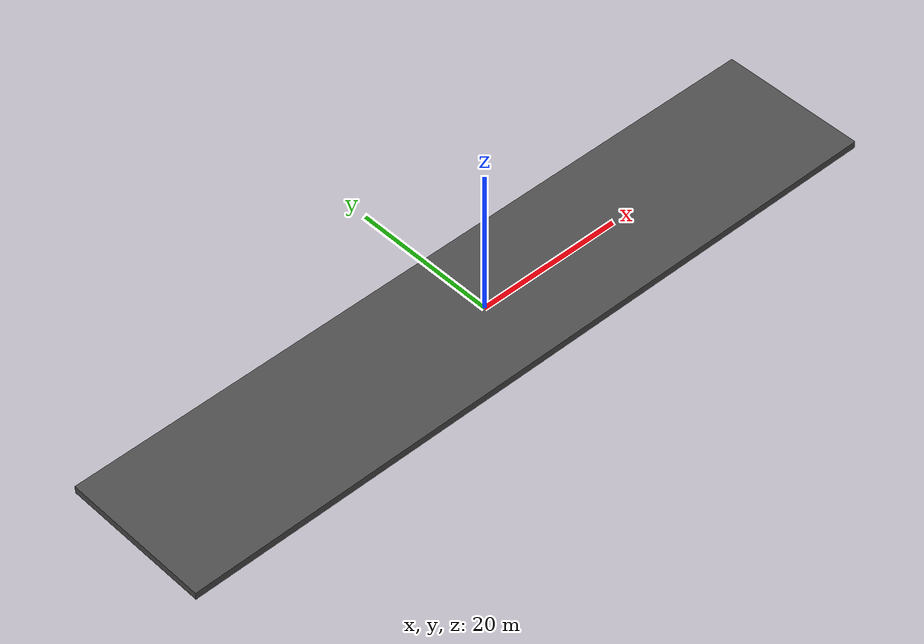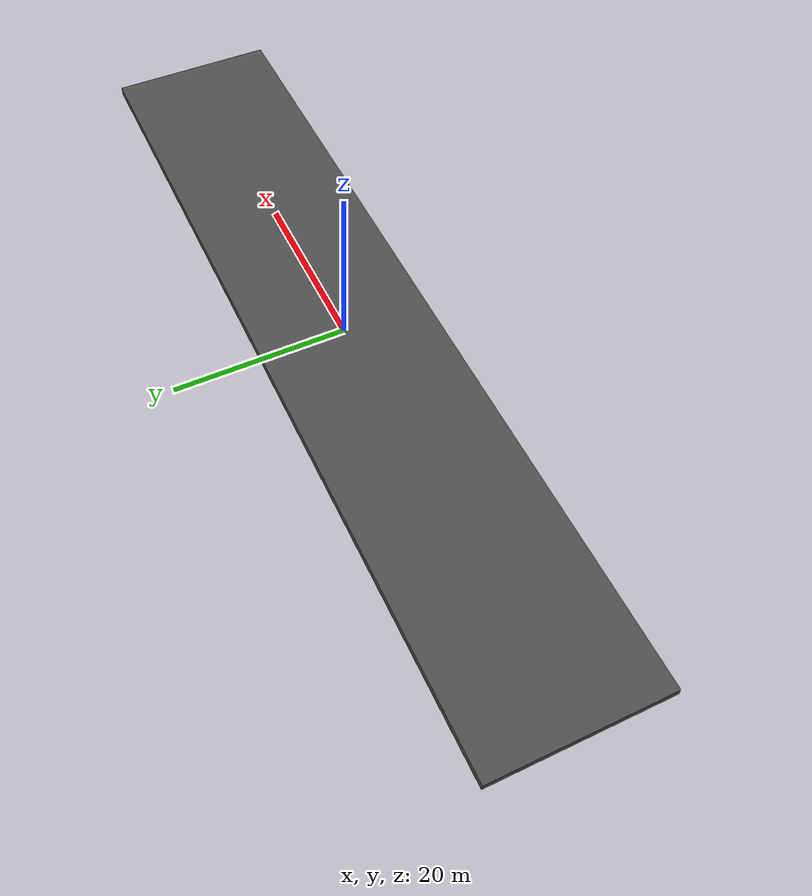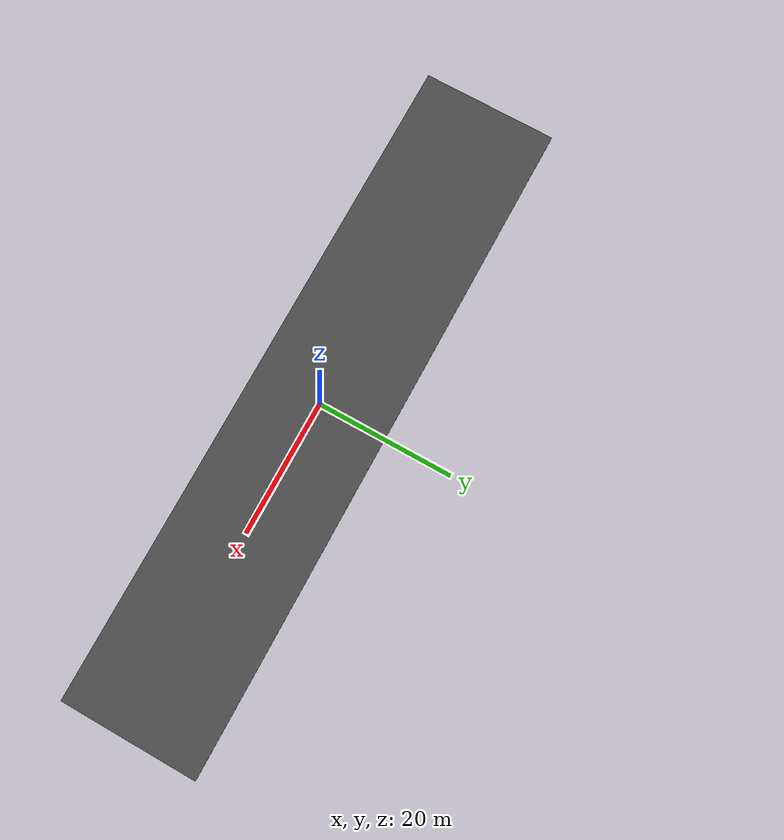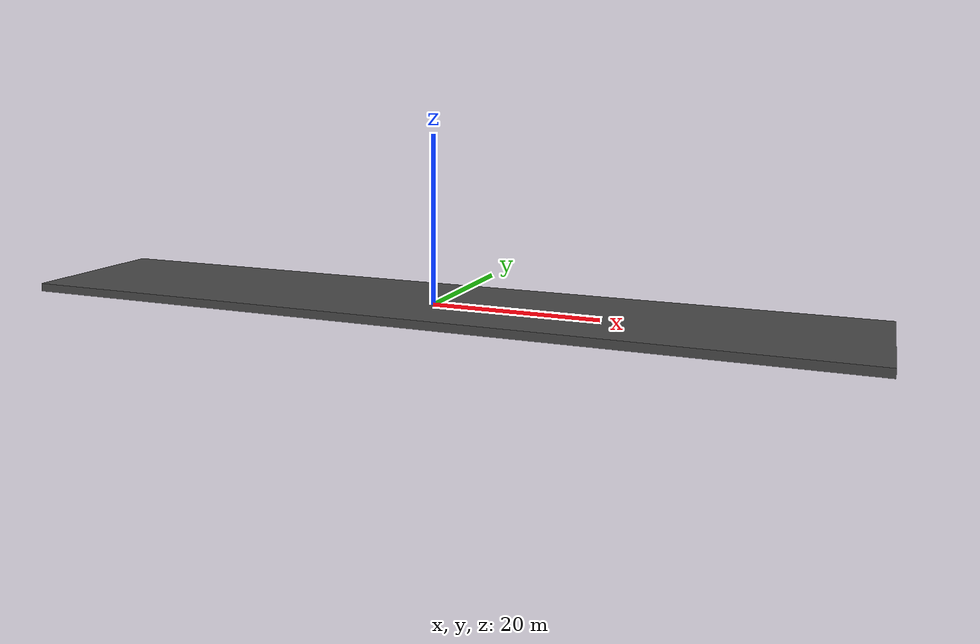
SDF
<?xml version="1.0" ?>
<sdf version="1.6">
  <model name="plane20x100">
    <static>true</static>
    <link name="slope">
      <collision name="collision">
        <pose>0 0 0 0 0 0</pose>
        <geometry>
          <mesh>
            <uri>model://plane20x100/meshes/plane20x100.stl</uri>
          </mesh>
        </geometry>
        <surface>
          <friction>
            <ode>
              <mu>1.0</mu>
              <mu2>1.0</mu2>
            </ode>
          </friction>
          <contact>
            <ode>
              <kp>10000000.0</kp>
              <kd>1.0</kd>
              <min_depth>0.001</min_depth>
              <max_vel>0.1</max_vel>
            </ode>
          </contact>
        </surface>
      </collision>
      <visual name="visual">
        <cast_shadows>false</cast_shadows>
        <pose>0 0 0 0 0 0</pose>
        <geometry>
          <mesh>
            <uri>model://plane20x100/meshes/plane20x100.stl</uri>
          </mesh>
        </geometry>
        <material>
          <ambient>0.3 0.3 0.3 1</ambient>
          <diffuse>0.3 0.3 0.3 1</diffuse>
          <specular>0.1 0.1 0.1 1</specular>
          <emissive>0 0 0 0</emissive>
        </material>
      </visual>
    </link>
  </model>
</sdf>
